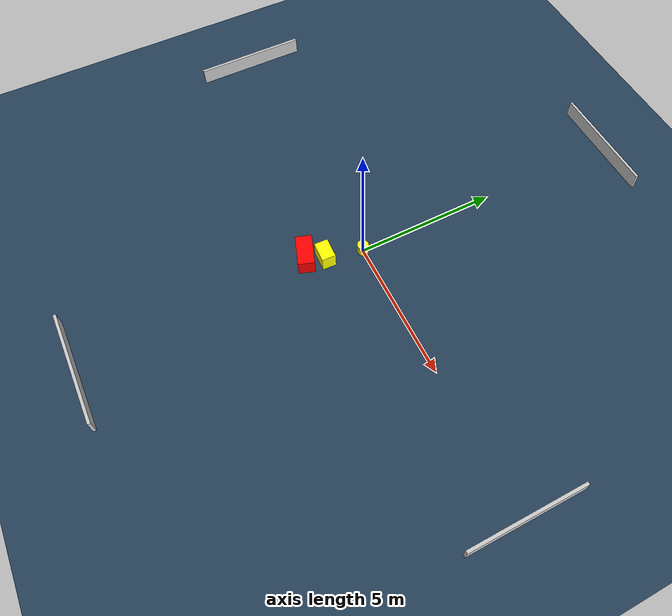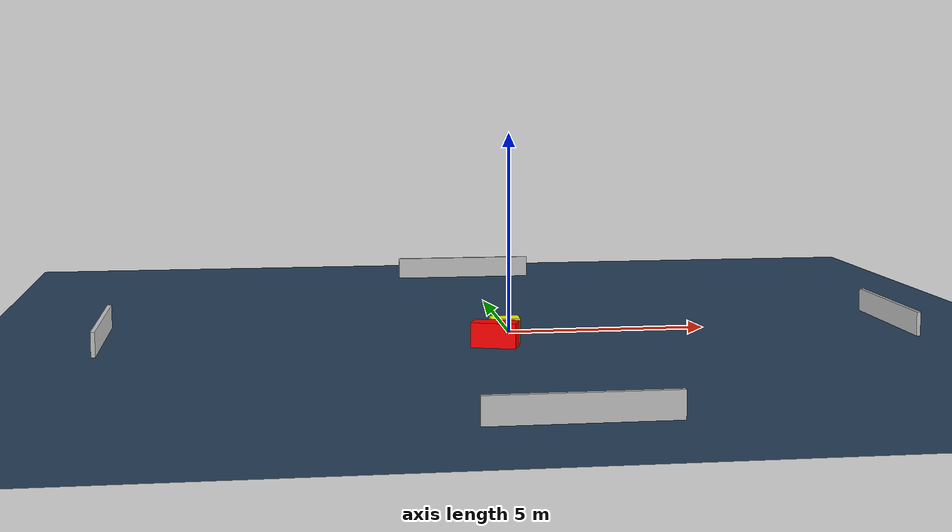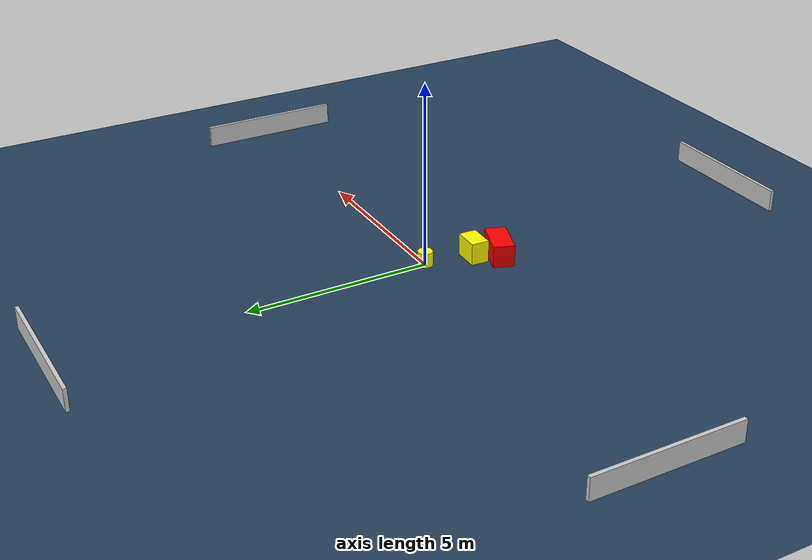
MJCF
<?xml version="1.0" ?>
<mujoco model="generated_environment">
  <option timestep="0.01" integrator="RK4" cone="elliptic"/>
  <default>
    <geom density="1"/>
  </default>
  <asset>
    <texture builtin="gradient" height="3072" name="skybox" rgb1="0.3 0.5 0.7" rgb2="0 0 0" type="skybox" width="512"/>
    <texture builtin="checker" height="300" name="groundplane" rgb1="0.2 0.3 0.4" rgb2="0.1 0.2 0.3" type="2d" width="300"/>
    <material name="groundplane" reflectance="0.2" texrepeat="5 5" texture="groundplane"/>
  </asset>
  <worldbody>
    <light dir="0 0 -1" directional="true" pos="0 0 1.5"/>
    <geom condim="3" friction="0.5 0.005 0.001" material="groundplane" name="floor" pos="0 0 0" size="0 0 0.05" type="plane"/>
    <body name="walls">
      <geom name="wall_1" condim="4" pos="-10.0 0.0 0.3" rgba="0.800000011920929 0.800000011920929 0.800000011920929 1.0" size="0.05 2.0 0.3" type="box"/>
      <geom name="wall_2" condim="4" pos="10.0 0.0 0.3" rgba="0.800000011920929 0.800000011920929 0.800000011920929 1.0" size="0.05 2.0 0.3" type="box"/>
      <geom name="wall_3" condim="4" pos="0.0 -10.0 0.3" rgba="0.800000011920929 0.800000011920929 0.800000011920929 1.0" size="2.0 0.05 0.3" type="box"/>
      <geom name="wall_4" condim="4" pos="0.0 10.0 0.3" rgba="0.800000011920929 0.800000011920929 0.800000011920929 1.0" size="2.0 0.05 0.3" type="box"/>
    </body>
    <body name="robot">
      <joint name="joint_x" type="slide" pos="0 0 0" axis="1 0 0"/>
      <joint name="joint_y" type="slide" pos="0 0 0" axis="0 1 0"/>
      <geom name="robot" type="cylinder" pos="0.0 0.0 0.2" size="0.2 0.2 0.0" mass="5.0" friction="1.0 0.005 0.0001" condim="4" rgba="1.0 1.0 0.0 1.0"/>
    </body>
    <body name="obstacle_1_movable">
      <geom name="obstacle_1_movable" condim="4" pos="-0.2911010198274543 -1.290735312875271 0.3" euler="0 0 357.7097633423645" friction="0.0 0.005 0.001" rgba="1.0 1.0 0.0 1.0" size="0.35556280728690604 0.24391604086958635 0.3" type="box" mass="0.1"/>
      <joint type="free"/>
    </body>
    <body name="obstacle_2_static">
      <geom name="obstacle_2_static" condim="4" pos="-0.6031258499678739 -1.8856929351493232 0.3" euler="0 0 340.8983065483463" friction="0.0 0.005 0.001" rgba="1.0 0.0 0.0 1.0" size="0.5475501450533812 0.2861423619197728 0.3" type="box"/>
    </body>
  </worldbody>
  <actuator>
    <motor name="actuator_x" joint="joint_x" gear="1" ctrlrange="-1 1"/>
    <motor name="actuator_y" joint="joint_y" gear="1" ctrlrange="-1 1"/>
  </actuator>
</mujoco>
